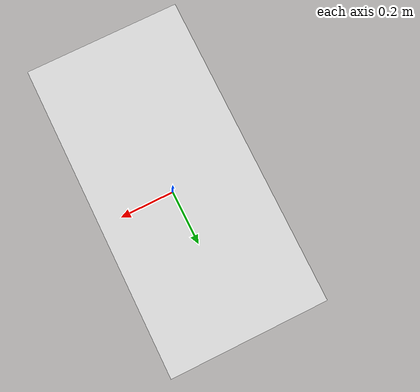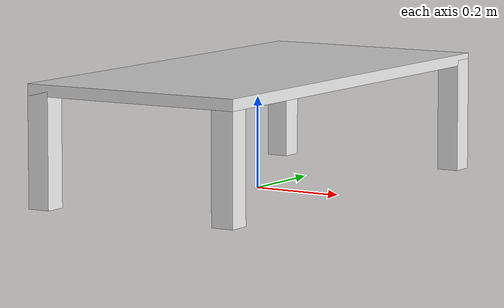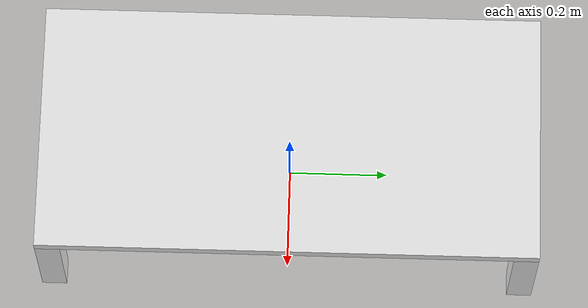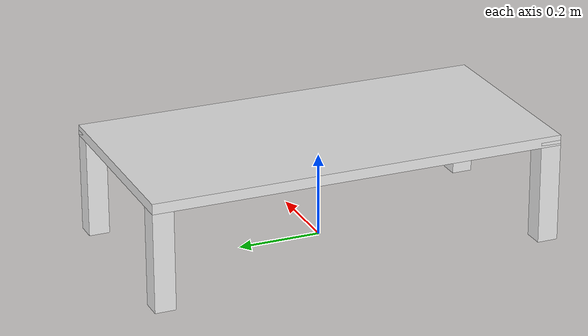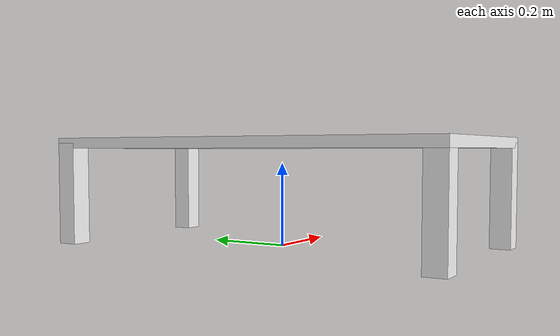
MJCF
<mujoco model="small_table">
    <worldbody>
        <body name="small_table" pos="0 0 0" quat="1 0 0 0">
            <geom name="small_table_geom_1" type="box" pos="0.0 0.0 0.25" size="0.25 0.5 0.0125" rgba="0.9 0.9 .9 1" mass="6" condim="1" friction="1 0.005 0.0001" />
            <geom name="small_table_geom_2" type="box" pos="0.225 0.475 0.125" size="0.025 0.025 0.125" rgba="0.9 0.9 .9 1" mass="1" />
            <geom name="small_table_geom_3" type="box" pos="0.225 -0.475 0.125" size="0.025 0.025 0.125" rgba="0.9 0.9 .9 1" mass="1" />
            <geom name="small_table_geom_4" type="box" pos="-0.225 0.475 0.125" size="0.025 0.025 0.125" rgba="0.9 0.9 .9 1" mass="1" />
            <geom name="small_table_geom_5" type="box" pos="-0.225 -0.475 0.125" size="0.025 0.025 0.125" rgba="0.9 0.9 .9 1" mass="1" />
        </body>
    </worldbody>
</mujoco>
